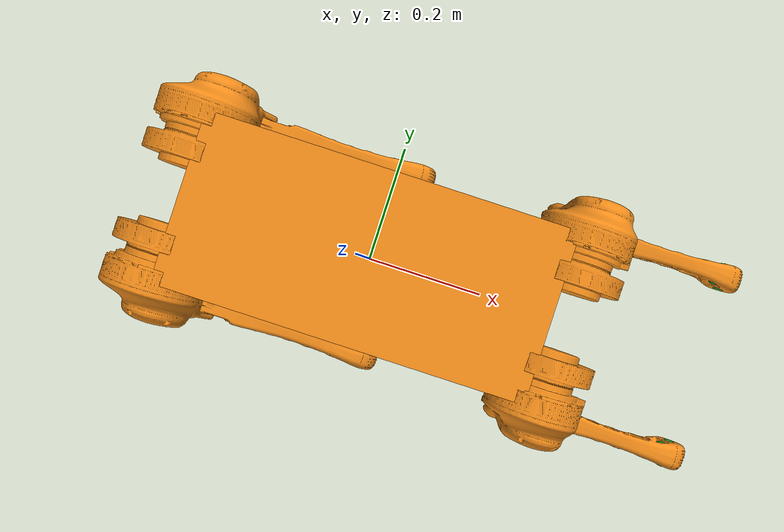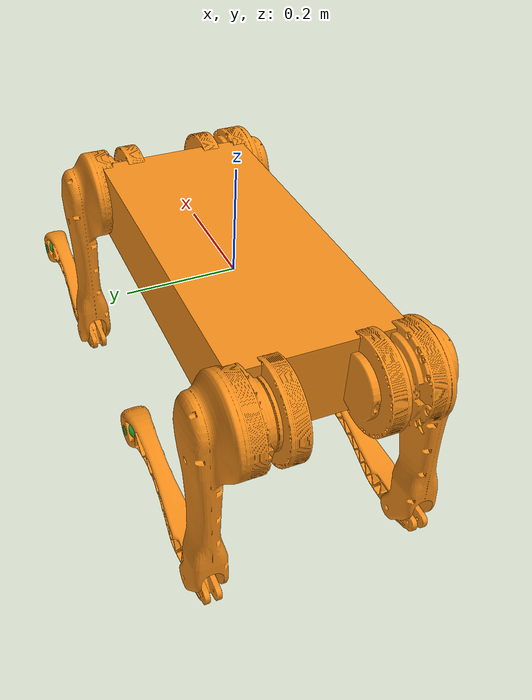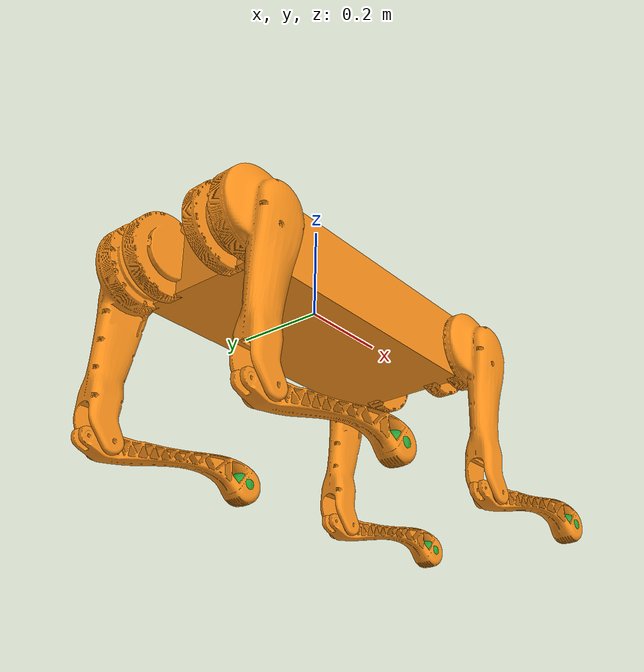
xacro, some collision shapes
<?xml version="1.0"?>

<!-- b1_description: Unitree B1 quadruped robot -->
<robot name="b1_description" xmlns:xacro="http://www.ros.org/wiki/xacro">

    <!-- define arguments -->
    <xacro:arg name="DEBUG" default="false"/> <!-- debug mode switch -->

    <!-- include xacro files -->
    <xacro:include filename="$(find b1_description)/xacro/b1.xacro"/>
    <xacro:include filename="$(find b1_description)/xacro/gazebo.xacro"/>

    <!-- B1 macro: expands to describe B1 quadruped robot -->
    <xacro:b1/>

    <!-- debug mode configuration -->
    <xacro:if value="$(arg DEBUG)">
        <!-- statically affix B1 base to world; i.e. "hang up" the robot -->
        <link name="world"/>
        <joint name="base_static_joint" type="fixed">
            <origin rpy="0 0 0" xyz="0 0 0"/>
            <parent link="world"/>
            <child link="base"/>
        </joint>
    </xacro:if>

</robot>

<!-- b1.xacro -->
<robot name="b1_description" xmlns:xacro="http://www.ros.org/wiki/xacro">

    <!-- B1 macro: describes Unitree B1 quadruped robot -->
    <xacro:macro name="b1">

        <xacro:include filename="$(find b1_description)/xacro/const.xacro"/>
        <xacro:include filename="$(find b1_description)/xacro/materials.xacro"/>
        <xacro:include filename="$(find b1_description)/xacro/leg.xacro"/>

        <!-- Rotor related joint and link is only for demonstrate location. -->
        <!-- Actually, the rotor will rotate and the joint is not fixed. Reduction ratio should be considered. -->

        <link name="base">
            <visual>
                <origin rpy="0 0 0" xyz="0 0 0"/>
                <geometry>
                    <box size="0.001 0.001 0.001"/>
                </geometry>
            </visual>
        </link>

        <joint name="floating_base" type="fixed">
            <origin rpy="0 0 0" xyz="0 0 0"/>
            <parent link="base"/>
            <child link="trunk"/>
        </joint>

        <link name="trunk">
            <visual>
                <origin rpy="0 0 0" xyz="0 0 0"/>
                <geometry>
                    <mesh filename="package://b1_description/meshes/trunk.dae" scale="1 1 1"/>
                </geometry>
                <material name="orange"/>
            </visual>
            <collision>
                <origin rpy="0 0 0" xyz="0 0 0"/>
                <geometry>
                    <box size="${trunk_length} ${trunk_width} ${trunk_height}"/>
                </geometry>
            </collision>
            <inertial>
                <origin rpy="0 0 0" xyz="${trunk_com_x} ${trunk_com_y} ${trunk_com_z}"/>
                <mass value="${trunk_mass}"/>
                <inertia
                    ixx="${trunk_ixx}" ixy="${trunk_ixy}" ixz="${trunk_ixz}"
                    iyy="${trunk_iyy}" iyz="${trunk_iyz}"
                    izz="${trunk_izz}"/>
            </inertial>
        </link>

        <joint name="imu_joint" type="fixed">
            <parent link="trunk"/>
            <child link="imu_link"/>
            <origin rpy="0 0 0" xyz="0 0 0"/>
        </joint>

        <link name="imu_link">
            <inertial>
                <mass value="0.001"/>
                <origin rpy="0 0 0" xyz="0 0 0"/>
                <inertia ixx="0.0001" ixy="0" ixz="0" iyy="0.0001" iyz="0" izz="0.0001"/>
            </inertial>
            <visual>
                <origin rpy="0 0 0" xyz="0 0 0"/>
                <geometry>
                    <box size="0.001 0.001 0.001"/>
                </geometry>
                <material name="red"/>
            </visual>
            <collision>
                <origin rpy="0 0 0" xyz="0 0 0"/>
                <geometry>
                    <box size=".001 .001 .001"/>
                </geometry>
            </collision>
        </link>

        <xacro:leg name="FR" mirror="-1" mirror_dae= "False" front_hind="1"  front_hind_dae="True"  />
        <xacro:leg name="FL" mirror="1"  mirror_dae="True"   front_hind="1"  front_hind_dae="True"  />
        <xacro:leg name="RR" mirror="-1" mirror_dae="False"  front_hind="-1" front_hind_dae="False" />
        <xacro:leg name="RL" mirror="1"  mirror_dae="True"   front_hind="-1" front_hind_dae="False" />

    </xacro:macro>

</robot>

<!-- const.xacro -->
<robot name="b1_description" xmlns:xacro="http://www.ros.org/wiki/xacro">

    <!-- Constants for robot dimensions -->
    <xacro:property name="PI" value="3.1415926535897931"/>
    <xacro:property name="stick_mass" value="0.00001"/>

    <!-- simplified collision value -->
    <xacro:property name="trunk_width" value="0.30"/>
    <xacro:property name="trunk_length" value="0.647"/>
    <xacro:property name="trunk_height" value="0.15"/>
    <xacro:property name="hip_radius" value="0.09"/>
    <xacro:property name="hip_length" value="0.04"/>
    <xacro:property name="thigh_shoulder_radius" value="0.044"/>
    <xacro:property name="thigh_shoulder_length" value="0.08"/>
    <xacro:property name="thigh_width" value="0.05"/>
    <xacro:property name="thigh_height" value="0.08"/>
    <xacro:property name="calf_width" value="0.04"/>
    <xacro:property name="calf_height" value="0.05"/>
    <xacro:property name="foot_radius" value="0.04"/>
    <xacro:property name="stick_radius" value="0.01"/>
    <xacro:property name="stick_length" value="0.2"/>

    <!-- kinematic value -->
    <xacro:property name="thigh_offset" value="0.12675"/>
    <xacro:property name="thigh_length" value="0.35"/>
    <xacro:property name="calf_length" value="0.35"/>

    <!-- leg offset from trunk center value -->
    <xacro:property name="leg_offset_x" value="0.3455"/>
    <xacro:property name="leg_offset_y" value="0.072"/>
    <xacro:property name="trunk_offset_z" value="0.01675"/>
    <xacro:property name="hip_offset" value="0.12675"/>

    <!-- offset of link and rotor locations (left front) -->
    <xacro:property name="hip_offset_x" value="0.3455"/>
    <xacro:property name="hip_offset_y" value="0.072"/>
    <xacro:property name="hip_offset_z" value="0.0"/>
    <xacro:property name="hip_rotor_offset_x" value="0.1955"/>
    <xacro:property name="hip_rotor_offset_y" value="0.072"/>
    <xacro:property name="hip_rotor_offset_z" value="0.0"/>

    <xacro:property name="thigh_offset_x" value="0"/>
    <xacro:property name="thigh_offset_y" value="0.12675"/>
    <xacro:property name="thigh_offset_z" value="0.0"/>
    <xacro:property name="thigh_rotor_offset_x" value="0.0"/>
    <xacro:property name="thigh_rotor_offset_y" value="0.00935"/>
    <xacro:property name="thigh_rotor_offset_z" value="0.0"/>

    <xacro:property name="calf_offset_x" value="0.0"/>
    <xacro:property name="calf_offset_y" value="0.0"/>
    <xacro:property name="calf_offset_z" value="-0.35"/>
    <xacro:property name="calf_rotor_offset_x" value="0.0"/>
    <xacro:property name="calf_rotor_offset_y" value="-0.0519"/>
    <xacro:property name="calf_rotor_offset_z" value="0.0"/>

    <!-- joint limits -->
    <xacro:property name="damping" value="0"/>
    <xacro:property name="friction" value="0"/>
    <xacro:property name="hip_position_max" value="0.75"/>
    <xacro:property name="hip_position_min" value="-0.75"/>
    <xacro:property name="hip_velocity_max" value="19.69"/>
    <xacro:property name="hip_torque_max" value="91.0035"/>
    <xacro:property name="thigh_position_max" value="3.5"/>
    <xacro:property name="thigh_position_min" value="-1.0"/>
    <xacro:property name="thigh_velocity_max" value="23.32"/>
    <xacro:property name="thigh_torque_max" value="93.33"/>
    <xacro:property name="calf_position_max" value="-0.6"/>
    <xacro:property name="calf_position_min" value="-2.6"/>
    <xacro:property name="calf_velocity_max" value="15.55"/>
    <xacro:property name="calf_torque_max" value="140"/>

    <!-- dynamics inertial value -->
    <!-- trunk -->
    <xacro:property name="trunk_mass" value="29.45"/>
    <xacro:property name="trunk_com_x" value="0.008987"/>
    <xacro:property name="trunk_com_y" value="0.002243"/>
    <xacro:property name="trunk_com_z" value="0.003013"/>
    <xacro:property name="trunk_ixx" value="0.183142146"/>
    <xacro:property name="trunk_ixy" value="-0.001379002"/>
    <xacro:property name="trunk_ixz" value="-0.027956055"/>
    <xacro:property name="trunk_iyy" value="0.756327752"/>
    <xacro:property name="trunk_iyz" value="0.000193774"/>
    <xacro:property name="trunk_izz" value="0.783777558"/>

    <!-- hip (left front) -->
    <xacro:property name="hip_mass" value="2.15"/>
    <xacro:property name="hip_com_x" value="-0.020298"/>
    <xacro:property name="hip_com_y" value="0.009758"/>
    <xacro:property name="hip_com_z" value="0.000109"/>
    <xacro:property name="hip_ixx" value="0.00406608"/>
    <xacro:property name="hip_ixy" value="-0.000288071"/>
    <xacro:property name="hip_ixz" value="-0.000004371"/>
    <xacro:property name="hip_iyy" value="0.008775259"/>
    <xacro:property name="hip_iyz" value="0.000001811"/>
    <xacro:property name="hip_izz" value="0.006060348"/>

    <xacro:property name="hip_rotor_mass" value="0.199"/>
    <xacro:property name="hip_rotor_com_x" value="0.0"/>
    <xacro:property name="hip_rotor_com_y" value="0.0"/>
    <xacro:property name="hip_rotor_com_z" value="0.0"/>
    <xacro:property name="hip_rotor_ixx" value="0.00039249"/>
    <xacro:property name="hip_rotor_ixy" value="0.0"/>
    <xacro:property name="hip_rotor_ixz" value="0.0"/>
    <xacro:property name="hip_rotor_iyy" value="0.000219397"/>
    <xacro:property name="hip_rotor_iyz" value="0.0"/>
    <xacro:property name="hip_rotor_izz" value="0.000219397"/>

    <!-- thigh -->
    <xacro:property name="thigh_mass" value="4.3"/>
    <xacro:property name="thigh_com_x" value="-0.000235"/>
    <xacro:property name="thigh_com_y" value="-0.028704"/>
    <xacro:property name="thigh_com_z" value="-0.054169"/>
    <xacro:property name="thigh_ixx" value="0.044459086"/>
    <xacro:property name="thigh_ixy" value="0.000128738"/>
    <xacro:property name="thigh_ixz" value="-0.002343913"/>
    <xacro:property name="thigh_iyy" value="0.046023457"/>
    <xacro:property name="thigh_iyz" value="0.006032996"/>
    <xacro:property name="thigh_izz" value="0.008696078"/>

    <xacro:property name="thigh_rotor_mass" value="0.266"/>
    <xacro:property name="thigh_rotor_com_x" value="0.0"/>
    <xacro:property name="thigh_rotor_com_y" value="0.0"/>
    <xacro:property name="thigh_rotor_com_z" value="0.0"/>
    <xacro:property name="thigh_rotor_ixx" value="0.000485657"/>
    <xacro:property name="thigh_rotor_ixy" value="0.0"/>
    <xacro:property name="thigh_rotor_ixz" value="0.0"/>
    <xacro:property name="thigh_rotor_iyy" value="0.00091885"/>
    <xacro:property name="thigh_rotor_iyz" value="0.0"/>
    <xacro:property name="thigh_rotor_izz" value="0.000485657"/>

    <!-- calf -->
    <xacro:property name="calf_mass" value="1.05"/>
    <xacro:property name="calf_com_x" value="0.005237"/>
    <xacro:property name="calf_com_y" value="0.0"/>
    <xacro:property name="calf_com_z" value="-0.202805"/>
    <xacro:property name="calf_ixx" value="0.015011003"/>
    <xacro:property name="calf_ixy" value="0.000000052"/>
    <xacro:property name="calf_ixz" value="0.000250042"/>
    <xacro:property name="calf_iyy" value="0.015159462"/>
    <xacro:property name="calf_iyz" value="0.000000461"/>
    <xacro:property name="calf_izz" value="0.000375749"/>

    <xacro:property name="calf_rotor_mass" value="0.266"/>
    <xacro:property name="calf_rotor_com_x" value="0.0"/>
    <xacro:property name="calf_rotor_com_y" value="0.0"/>
    <xacro:property name="calf_rotor_com_z" value="0.0"/>
    <xacro:property name="calf_rotor_ixx" value="0.000485657"/>
    <xacro:property name="calf_rotor_ixy" value="0.0"/>
    <xacro:property name="calf_rotor_ixz" value="0.0"/>
    <xacro:property name="calf_rotor_iyy" value="0.00091885"/>
    <xacro:property name="calf_rotor_iyz" value="0.0"/>
    <xacro:property name="calf_rotor_izz" value="0.000485657"/>

    <!-- foot -->
    <xacro:property name="foot_mass" value="0.05"/>

</robot>

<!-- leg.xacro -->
<robot xmlns:xacro="http://www.ros.org/wiki/xacro">

    <xacro:include filename="$(find b1_description)/xacro/transmission.xacro"/>

    <xacro:macro name="leg" params="name mirror mirror_dae front_hind front_hind_dae">

        <joint name="${name}_hip_joint" type="revolute">
            <xacro:if value="${(mirror_dae == False) and (front_hind_dae == True)}">
                <origin rpy="0 0 0" xyz="${leg_offset_x} ${-leg_offset_y} 0"/>
            </xacro:if>
            <xacro:if value="${(mirror_dae == True) and (front_hind_dae == True)}">
                <origin rpy="0 0 0" xyz="${leg_offset_x} ${leg_offset_y} 0"/>
            </xacro:if>
            <xacro:if value="${(mirror_dae == False) and (front_hind_dae == False)}">
                <origin rpy="0 0 0" xyz="${-leg_offset_x} ${-leg_offset_y} 0"/>
            </xacro:if>
            <xacro:if value="${(mirror_dae == True) and (front_hind_dae == False)}">
                <origin rpy="0 0 0" xyz="${-leg_offset_x} ${leg_offset_y} 0"/>
            </xacro:if>
            <parent link="trunk"/>
            <child link="${name}_hip"/>
            <axis xyz="1 0 0"/>
            <dynamics damping="${damping}" friction="${friction}"/>
            <xacro:if value="${(mirror_dae == True)}">
                <limit effort="${hip_torque_max}" velocity="${hip_velocity_max}" lower="${hip_position_min}" upper="${hip_position_max}"/>
            </xacro:if>
            <xacro:if value="${(mirror_dae == False)}">
                <limit effort="${hip_torque_max}" velocity="${hip_velocity_max}" lower="${-hip_position_max}" upper="${-hip_position_min}"/>
            </xacro:if>
        </joint>

        <joint name="${name}_hip_rotor_joint" type="fixed">
            <xacro:if value="${(mirror_dae == False) and (front_hind_dae == True)}">
                <origin rpy="0 0 0" xyz="${hip_rotor_offset_x} ${-hip_rotor_offset_y} 0"/>
            </xacro:if>
            <xacro:if value="${(mirror_dae == True) and (front_hind_dae == True)}">
                <origin rpy="0 0 0" xyz="${hip_rotor_offset_x} ${hip_rotor_offset_y} 0"/>
            </xacro:if>
            <xacro:if value="${(mirror_dae == False) and (front_hind_dae == False)}">
                <origin rpy="0 0 0" xyz="${-hip_rotor_offset_x} ${-hip_rotor_offset_y} 0"/>
            </xacro:if>
            <xacro:if value="${(mirror_dae == True) and (front_hind_dae == False)}">
                <origin rpy="0 0 0" xyz="${-hip_rotor_offset_x} ${hip_rotor_offset_y} 0"/>
            </xacro:if>
            <parent link="trunk"/>
            <child link="${name}_hip_rotor"/>
        </joint>

        <link name="${name}_hip">
            <visual>
                <xacro:if value="${(mirror_dae == True) and (front_hind_dae == True)}">
                    <origin rpy="0 0 0" xyz="0 0 0"/>
                </xacro:if>
                <xacro:if value="${(mirror_dae == False) and (front_hind_dae == True)}">
                    <origin rpy="${PI} 0 0" xyz="0 0 0"/>
                </xacro:if>
                <xacro:if value="${(mirror_dae == True) and (front_hind_dae == False)}">
                    <origin rpy="0 ${PI} 0" xyz="0 0 0"/>
                </xacro:if>
                <xacro:if value="${(mirror_dae == False) and (front_hind_dae == False)}">
                    <origin rpy="${PI} ${PI} 0" xyz="0 0 0"/>
                </xacro:if>
                <geometry>
                    <mesh filename="package://b1_description/meshes/hipb.dae" scale="1 1 1"/>
                </geometry>
                <material name="orange"/>
            </visual>
            <collision>
                <xacro:if value="${(mirror_dae == True) and (front_hind_dae == True)}">
                    <origin rpy="0 0 0" xyz="0 0 0"/>
                </xacro:if>
                <xacro:if value="${(mirror_dae == False) and (front_hind_dae == True)}">
                    <origin rpy="${PI} 0 0" xyz="0 0 0"/>
                </xacro:if>
                <xacro:if value="${(mirror_dae == True) and (front_hind_dae == False)}">
                    <origin rpy="0 ${PI} 0" xyz="0 0 0"/>
                </xacro:if>
                <xacro:if value="${(mirror_dae == False) and (front_hind_dae == False)}">
                    <origin rpy="${PI} ${PI} 0" xyz="0 0 0"/>
                </xacro:if>
                <geometry>
                    <mesh filename="package://b1_description/meshes/hipb.dae" scale="1 1 1"/>
                </geometry>
            </collision>
            <inertial>
                <origin rpy="0 0 0" xyz="${hip_com_x*front_hind} ${hip_com_y*mirror} ${hip_com_z}"/>
                <mass value="${hip_mass}"/>
                <inertia
                    ixx="${hip_ixx}" ixy="${hip_ixy*mirror*front_hind}" ixz="${hip_ixz*front_hind}"
                    iyy="${hip_iyy}" iyz="${hip_iyz*mirror}"
                    izz="${hip_izz}"/>
            </inertial>
        </link>

        <link name="${name}_hip_rotor">
            <visual>
                <origin rpy="0 ${PI/2.0} 0" xyz="0 0 0"/>
                <geometry>
                    <cylinder length="0.02" radius="0.05"/>
                </geometry>
                <material name="green"/>
            </visual>
            <inertial>
                <origin rpy="0 0 0" xyz="${hip_rotor_com_x} ${hip_rotor_com_y} ${hip_rotor_com_z}"/>
                <mass value="${hip_rotor_mass}"/>
                <inertia
                    ixx="${hip_rotor_ixx}" ixy="${hip_rotor_ixy}" ixz="${hip_rotor_ixz}"
                    iyy="${hip_rotor_iyy}" iyz="${hip_rotor_iyz}"
                    izz="${hip_rotor_izz}"/>
            </inertial>
        </link>

        <joint name="${name}_thigh_joint" type="revolute">
            <origin rpy="0 0 0" xyz="0 ${thigh_offset*mirror} 0"/>
            <parent link="${name}_hip"/>
            <child link="${name}_thigh"/>
            <axis xyz="0 1 0"/>
            <dynamics damping="${damping}" friction="${friction}"/>
            <limit effort="${thigh_torque_max}" velocity="${thigh_velocity_max}" lower="${thigh_position_min}" upper="${thigh_position_max}"/>
        </joint>

        <joint name="${name}_thigh_rotor_joint" type="fixed">
            <origin rpy="0 0 0" xyz="${thigh_rotor_offset_x} ${thigh_rotor_offset_y*mirror} 0"/>
            <parent link="${name}_hip"/>
            <child link="${name}_thigh_rotor"/>
        </joint>

        <link name="${name}_thigh">
            <visual>
                <origin rpy="0 0 0" xyz="0 0 0"/>
                <geometry>
                    <xacro:if value="${mirror_dae == True}">
                        <mesh filename="package://b1_description/meshes/thighb.dae" scale="1 1 1"/>
                    </xacro:if>
                    <xacro:if value="${mirror_dae == False}">
                        <mesh filename="package://b1_description/meshes/thigh_mirrorb.dae" scale="1 1 1"/>
                    </xacro:if>
                </geometry>
                <material name="orange"/>
            </visual>
            <collision>
                <origin rpy="0 0 0" xyz="0 0 0"/>
                <geometry>
                    <xacro:if value="${mirror_dae == True}">
                        <mesh filename="package://b1_description/meshes/thighb.dae" scale="1 1 1"/>
                    </xacro:if>
                    <xacro:if value="${mirror_dae == False}">
                        <mesh filename="package://b1_description/meshes/thigh_mirrorb.dae" scale="1 1 1"/>
                    </xacro:if>
                </geometry>
            </collision>
            <inertial>
                <origin rpy="0 0 0" xyz="${thigh_com_x} ${thigh_com_y*mirror} ${thigh_com_z}"/>
                <mass value="${thigh_mass}"/>
                <inertia
                    ixx="${thigh_ixx}" ixy="${thigh_ixy*mirror}" ixz="${thigh_ixz}"
                    iyy="${thigh_iyy}" iyz="${thigh_iyz*mirror}"
                    izz="${thigh_izz}"/>
            </inertial>
        </link>

        <link name="${name}_thigh_rotor">
            <visual>
                <origin rpy="${PI/2.0} 0 0" xyz="0 0 0"/>
                <geometry>
                    <cylinder length="0.02" radius="0.05"/>
                </geometry>
                <material name="green"/>
            </visual>
            <inertial>
                <origin rpy="0 0 0" xyz="${thigh_rotor_com_x} ${thigh_rotor_com_y} ${thigh_rotor_com_z}"/>
                <mass value="${thigh_rotor_mass}"/>
                <inertia
                    ixx="${thigh_rotor_ixx}" ixy="${thigh_rotor_ixy}" ixz="${thigh_rotor_ixz}"
                    iyy="${thigh_rotor_iyy}" iyz="${thigh_rotor_iyz}"
                    izz="${thigh_rotor_izz}"/>
            </inertial>
        </link>

        <joint name="${name}_calf_joint" type="revolute">
            <origin rpy="0 0 0" xyz="0 0 ${-thigh_length}"/>
            <parent link="${name}_thigh"/>
            <child link="${name}_calf"/>
            <axis xyz="0 1 0"/>
            <dynamics damping="${damping}" friction="${friction}"/>
            <limit effort="${calf_torque_max}" velocity="${calf_velocity_max}" lower="${calf_position_min}" upper="${calf_position_max}"/>
        </joint>

        <joint name="${name}_calf_rotor_joint" type="fixed">
            <origin rpy="0 0 0" xyz="${calf_rotor_offset_x} ${calf_rotor_offset_y*mirror} 0"/>
            <parent link="${name}_thigh"/>
            <child link="${name}_calf_rotor"/>
        </joint>

        <link name="${name}_calf">
            <visual>
                <origin rpy="0 0 0" xyz="0 0 0"/>
                <geometry>
                    <mesh filename="package://b1_description/meshes/calfb.dae" scale="1 1 1"/>
                </geometry>
                <material name="orange"/>
            </visual>
            <collision>
                <origin rpy="0 0 0" xyz="0 0 0"/>
                <geometry>
                    <mesh filename="package://b1_description/meshes/calfb.dae" scale="1 1 1"/>
                </geometry>
            </collision>
            <inertial>
                <origin rpy="0 0 0" xyz="${calf_com_x} ${calf_com_y} ${calf_com_z}"/>
                <mass value="${calf_mass}"/>
                <inertia
                    ixx="${calf_ixx}" ixy="${calf_ixy}" ixz="${calf_ixz}"
                    iyy="${calf_iyy}" iyz="${calf_iyz}"
                    izz="${calf_izz}"/>
            </inertial>
        </link>

        <link name="${name}_calf_rotor">
            <visual>
                <origin rpy="${PI/2.0} 0 0" xyz="0 0 0"/>
                <geometry>
                    <cylinder length="0.02" radius="0.05"/>
                </geometry>
                <material name="green"/>
            </visual>
            <inertial>
                <origin rpy="0 0 0" xyz="${calf_rotor_com_x} ${calf_rotor_com_y} ${calf_rotor_com_z}"/>
                <mass value="${calf_rotor_mass}"/>
                <inertia
                    ixx="${calf_rotor_ixx}" ixy="${calf_rotor_ixy}" ixz="${calf_rotor_ixz}"
                    iyy="${calf_rotor_iyy}" iyz="${calf_rotor_iyz}"
                    izz="${calf_rotor_izz}"/>
            </inertial>
        </link>

        <joint name="${name}_foot_fixed" type="fixed">
            <origin rpy="0 0 0" xyz="0 0 ${-(calf_length)}"/>
            <parent link="${name}_calf"/>
            <child link="${name}_foot"/>
        </joint>

        <link name="${name}_foot">
            <visual>
                <origin rpy="0 0 0" xyz="0 0 0"/>
                <geometry>
                    <sphere radius="${foot_radius-0.01}"/>
                </geometry>
                <material name="green"/>
            </visual>
            <collision>
                <origin rpy="0 0 0" xyz="0 0 0"/>
                <geometry>
                    <sphere radius="${foot_radius}"/>
                </geometry>
            </collision>
            <inertial>
                <mass value="${foot_mass}"/>
                <inertia
                    ixx="${(2*foot_mass)/5.0*(foot_radius*foot_radius)}" ixy="0.0" ixz="0.0"
                    iyy="${(2*foot_mass)/5.0*(foot_radius*foot_radius)}" iyz="0.0"
                    izz="${(2*foot_mass)/5.0*(foot_radius*foot_radius)}"/>
            </inertial>
        </link>

        <xacro:leg_transmission name="${name}"/>
    </xacro:macro>
</robot>
